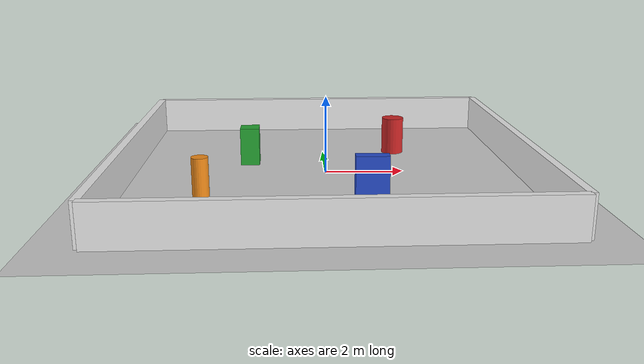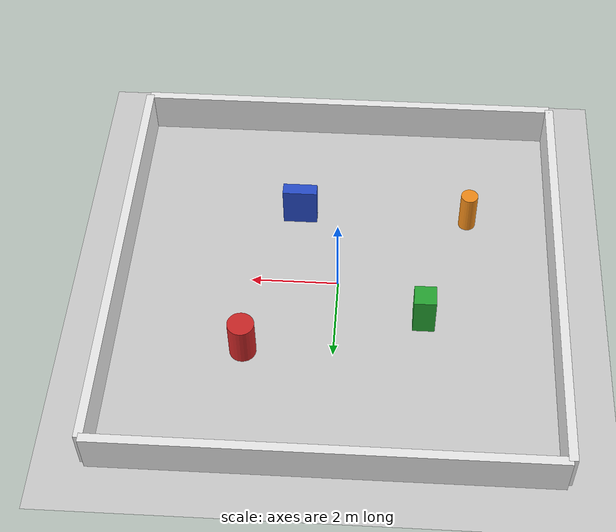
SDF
<?xml version="1.0" ?>
<sdf version="1.6">
<world name="amr_world">
<!-- name : nom du monde dans Gazebo -->

  <!-- PHYSIQUE — paramètres du moteur physique                     -->
  <physics type="ode">
  <!-- type="ode" : Open Dynamics Engine — moteur physique par défaut -->

    <real_time_update_rate>1000.0</real_time_update_rate>
    <!-- Nombre de pas de simulation par seconde -->
    <!-- 1000 Hz = simulation très précise mais CPU intensif -->

    <max_step_size>0.001</max_step_size>
    <!-- Durée d'un pas de simulation en secondes -->
    <!-- 0.001s = 1ms par pas -->

    <real_time_factor>1</real_time_factor>
    <!-- 1 = temps réel, 0.5 = simulation 2x plus lente que réel -->

  </physics>

  <!-- PLUGINS — extensions Gazebo                                  -->

  <plugin name="gazebo_ros_init" filename="libgazebo_ros_init.so"/>
  <!-- libgazebo_ros_init : initialiser ROS2 dans Gazebo -->
  <!-- Obligatoire pour que les plugins ROS2 fonctionnent -->

  <plugin name="gazebo_ros_factory" filename="libgazebo_ros_factory.so"/>
  <!-- libgazebo_ros_factory : permettre de spawner des robots depuis ROS2 -->

  <!-- LUMIÈRES                                                      -->

  <light name="sun" type="directional">
  <!-- type="directional" : lumière directionnelle (comme le soleil) -->
  <!-- Autres types : point (ampoule), spot (projecteur) -->

    <cast_shadows>true</cast_shadows>
    <!-- true : la lumière projette des ombres -->

    <pose>0 0 10 0 0 0</pose>
    <!-- Position et orientation de la lumière -->
    <!-- x y z roll pitch yaw -->

    <diffuse>0.8 0.8 0.8 1</diffuse>
    <!-- Couleur de la lumière diffuse (blanche) -->
    <!-- rgba : rouge vert bleu alpha -->

    <specular>0.2 0.2 0.2 1</specular>
    <!-- Couleur de la lumière spéculaire (reflets) -->

    <attenuation>
      <range>1000</range>       <!-- portée de la lumière en mètres -->
      <constant>0.9</constant>  <!-- atténuation constante -->
      <linear>0.01</linear>     <!-- atténuation linéaire -->
      <quadratic>0.001</quadratic> <!-- atténuation quadratique -->
    </attenuation>

    <direction>-0.5 0.1 -0.9</direction>
    <!-- Direction du rayon lumineux (vecteur normalisé) -->

  </light>

  <!-- SOL                                                           -->

  <model name="ground_plane">
  <!-- model : objet dans le monde Gazebo -->

    <static>true</static>
    <!-- static=true : l'objet ne bouge pas (économise le CPU) -->

    <link name="link">
      <collision name="collision">
        <geometry>
          <plane>
            <normal>0 0 1</normal>  <!-- normale vers le haut (axe Z) -->
            <size>100 100</size>    <!-- taille du sol en mètres -->
          </plane>
        </geometry>

        <surface>
          <friction>
            <ode>
              <mu>100</mu>   <!-- friction élevée pour que le robot ne glisse pas -->
              <mu2>50</mu2>
            </ode>
          </friction>
        </surface>
      </collision>

      <visual name="visual">
        <cast_shadows>false</cast_shadows>
        <geometry>
          <plane>
            <normal>0 0 1</normal>
            <size>100 100</size>
          </plane>
        </geometry>
        <material>
          <script>
            <uri>file://media/materials/scripts/gazebo.material</uri>
            <name>Gazebo/Grey</name>
            <!-- Gazebo/Grey : texture grise standard -->
          </script>
        </material>
      </visual>
    </link>
  </model>

  <!-- MURS — créer un environnement fermé                          -->

  <!-- MUR NORD -->
  <model name="wall_north">
    <static>true</static>
    <pose>0 5 0.5 0 0 0</pose>
    <!-- Position : y=5 (nord), z=0.5 (centre du mur à mi-hauteur) -->
    <link name="link">
      <collision name="collision">
        <geometry>
          <box><size>10 0.2 1.0</size></box>
          <!-- Mur : 10m de long, 20cm d'épaisseur, 1m de haut -->
        </geometry>
      </collision>
      <visual name="visual">
        <geometry>
          <box><size>10 0.2 1.0</size></box>
        </geometry>
        <material>
          <script>
            <uri>file://media/materials/scripts/gazebo.material</uri>
            <name>Gazebo/White</name>
          </script>
        </material>
      </visual>
    </link>
  </model>

  <!-- MUR SUD -->
  <model name="wall_south">
    <static>true</static>
    <pose>0 -5 0.5 0 0 0</pose>
    <link name="link">
      <collision name="collision">
        <geometry><box><size>10 0.2 1.0</size></box></geometry>
      </collision>
      <visual name="visual">
        <geometry><box><size>10 0.2 1.0</size></box></geometry>
        <material>
          <script>
            <uri>file://media/materials/scripts/gazebo.material</uri>
            <name>Gazebo/White</name>
          </script>
        </material>
      </visual>
    </link>
  </model>

  <!-- MUR EST -->
  <model name="wall_east">
    <static>true</static>
    <pose>5 0 0.5 0 0 0</pose>
    <link name="link">
      <collision name="collision">
        <geometry><box><size>0.2 10 1.0</size></box></geometry>
      </collision>
      <visual name="visual">
        <geometry><box><size>0.2 10 1.0</size></box></geometry>
        <material>
          <script>
            <uri>file://media/materials/scripts/gazebo.material</uri>
            <name>Gazebo/White</name>
          </script>
        </material>
      </visual>
    </link>
  </model>

  <!-- MUR OUEST -->
  <model name="wall_west">
    <static>true</static>
    <pose>-5 0 0.5 0 0 0</pose>
    <link name="link">
      <collision name="collision">
        <geometry><box><size>0.2 10 1.0</size></box></geometry>
      </collision>
      <visual name="visual">
        <geometry><box><size>0.2 10 1.0</size></box></geometry>
        <material>
          <script>
            <uri>file://media/materials/scripts/gazebo.material</uri>
            <name>Gazebo/White</name>
          </script>
        </material>
      </visual>
    </link>
  </model>

  <!-- OBSTACLES — objets dans l'environnement                      -->

  <!-- OBSTACLE 1 — colonne cylindrique -->
  <model name="obstacle_1">
    <static>true</static>
    <pose>2 2 0.5 0 0 0</pose>
    <link name="link">
      <collision name="collision">
        <geometry>
          <cylinder><radius>0.3</radius><length>1.0</length></cylinder>
        </geometry>
      </collision>
      <visual name="visual">
        <geometry>
          <cylinder><radius>0.3</radius><length>1.0</length></cylinder>
        </geometry>
        <material>
          <script>
            <uri>file://media/materials/scripts/gazebo.material</uri>
            <name>Gazebo/Red</name>
          </script>
        </material>
      </visual>
    </link>
  </model>

  <!-- OBSTACLE 2 — boîte -->
  <model name="obstacle_2">
    <static>true</static>
    <pose>-2 1 0.5 0 0 0</pose>
    <link name="link">
      <collision name="collision">
        <geometry>
          <box><size>0.5 0.5 1.0</size></box>
        </geometry>
      </collision>
      <visual name="visual">
        <geometry>
          <box><size>0.5 0.5 1.0</size></box>
        </geometry>
        <material>
          <script>
            <uri>file://media/materials/scripts/gazebo.material</uri>
            <name>Gazebo/Green</name>
          </script>
        </material>
      </visual>
    </link>
  </model>

  <!-- OBSTACLE 3 — boîte -->
  <model name="obstacle_3">
    <static>true</static>
    <pose>1 -2 0.5 0 0 0</pose>
    <link name="link">
      <collision name="collision">
        <geometry>
          <box><size>0.8 0.3 1.0</size></box>
        </geometry>
      </collision>
      <visual name="visual">
        <geometry>
          <box><size>0.8 0.3 1.0</size></box>
        </geometry>
        <material>
          <script>
            <uri>file://media/materials/scripts/gazebo.material</uri>
            <name>Gazebo/Blue</name>
          </script>
        </material>
      </visual>
    </link>
  </model>

  <!-- OBSTACLE 4 — colonne cylindrique -->
  <model name="obstacle_4">
    <static>true</static>
    <pose>-3 -2 0.5 0 0 0</pose>
    <link name="link">
      <collision name="collision">
        <geometry>
          <cylinder><radius>0.2</radius><length>1.0</length></cylinder>
        </geometry>
      </collision>
      <visual name="visual">
        <geometry>
          <cylinder><radius>0.2</radius><length>1.0</length></cylinder>
        </geometry>
        <material>
          <script>
            <uri>file://media/materials/scripts/gazebo.material</uri>
            <name>Gazebo/Orange</name>
          </script>
        </material>
      </visual>
    </link>
  </model>

</world>
</sdf>
